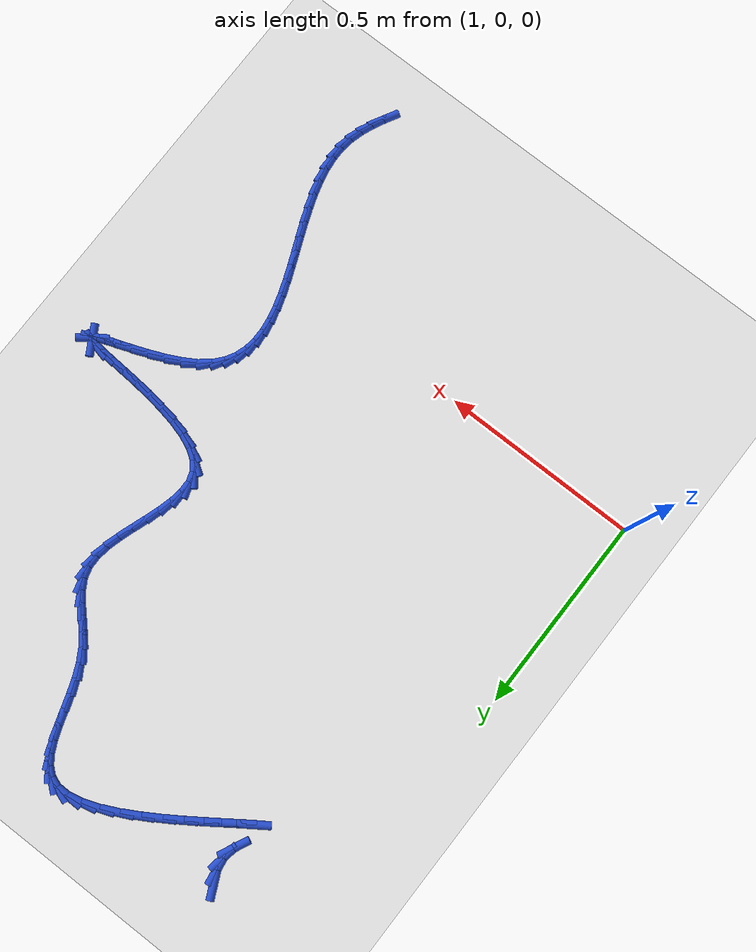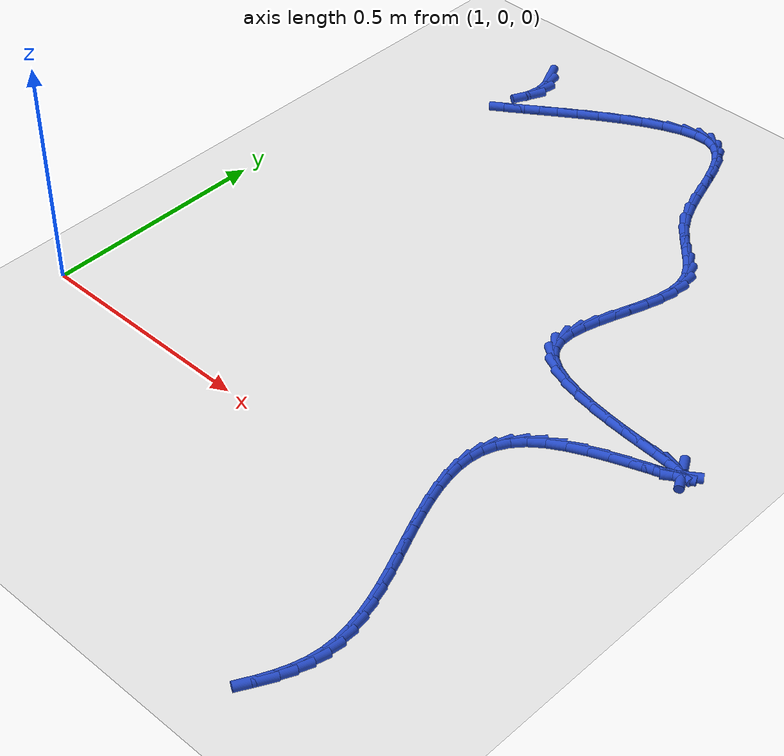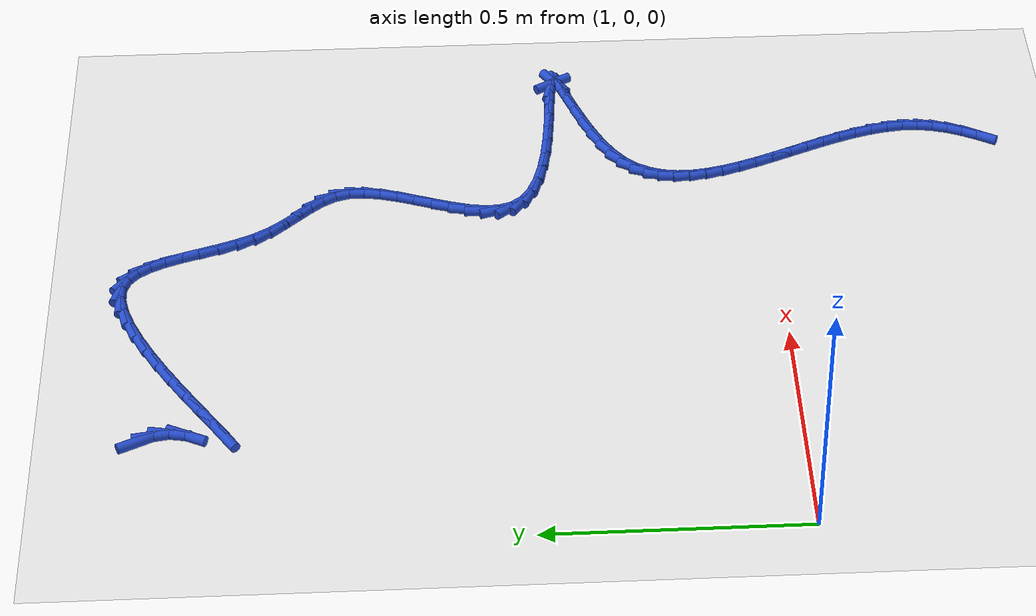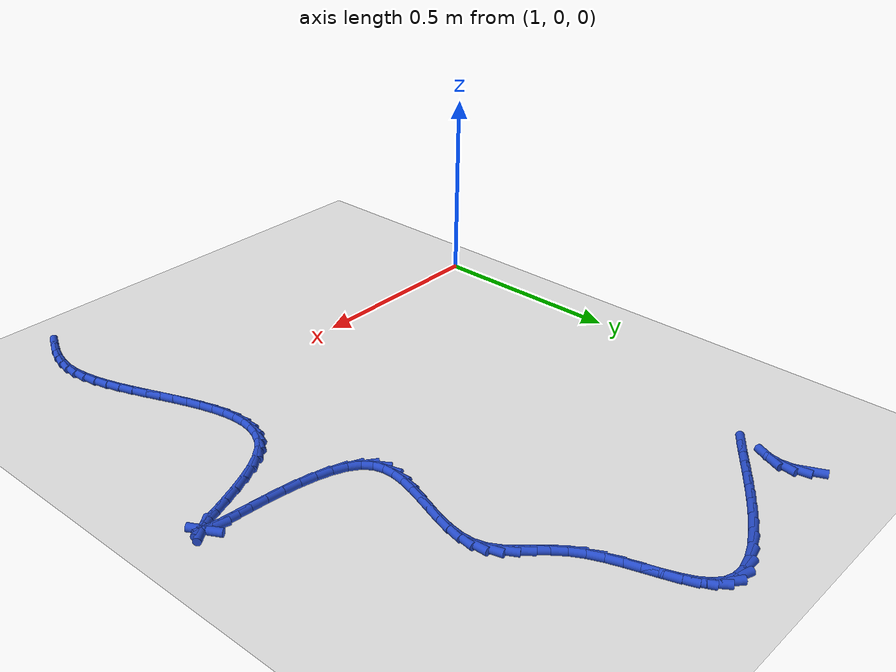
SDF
<sdf version="1.6">
 <world name="default">
  <model name="ground_plane">
   <static>1</static>
   <link name="link">
    <collision name="collision">
     <geometry><plane><normal>0 0 1</normal><size>100 100</size></plane></geometry>
     <surface><friction><ode><mu>100</mu><mu2>50</mu2></ode></friction></surface>
    </collision>
    <visual name="visual">
     <cast_shadows>0</cast_shadows>
     <geometry><plane><normal>0 0 1</normal><size>100 100</size></plane></geometry>
     <material>
      <script><uri>file://media/materials/scripts/gazebo.material</uri><name>Gazebo/WhiteGlow</name></script>
     </material>
    </visual>
   </link>
  </model>
  <model name="line">
   <link name="link_65">
    <pose>1.255966437680454 1.216960170696036 0.01 0 1.57 -1.132791951174022</pose>
    <collision name="collision">
     <geometry><cylinder><radius>0.01</radius><length>0.08</length></cylinder></geometry>
    </collision>
    <visual name="visual">
     <material>
      <script><name>Gazebo/Blue</name><uri>file://media/materials/scripts/gazebo.material</uri></script>
     </material>
     <geometry><cylinder><radius>0.01</radius><length>0.08</length></cylinder></geometry>
    </visual>
   </link>
   <link name="link_66">
    <pose>1.2689874423579295 1.1891579997324047 0.01 0 1.57 -1.4223576138626208</pose>
    <collision name="collision">
     <geometry><cylinder><radius>0.01</radius><length>0.08</length></cylinder></geometry>
    </collision>
    <visual name="visual">
     <material>
      <script><name>Gazebo/Blue</name><uri>file://media/materials/scripts/gazebo.material</uri></script>
     </material>
     <geometry><cylinder><radius>0.01</radius><length>0.08</length></cylinder></geometry>
    </visual>
   </link>
   <link name="link_67">
    <pose>1.273384985241097 1.1597505985868801 0.01 0 1.57 1.4004081107630555</pose>
    <collision name="collision">
     <geometry><cylinder><radius>0.01</radius><length>0.08</length></cylinder></geometry>
    </collision>
    <visual name="visual">
     <material>
      <script><name>Gazebo/Blue</name><uri>file://media/materials/scripts/gazebo.material</uri></script>
     </material>
     <geometry><cylinder><radius>0.01</radius><length>0.08</length></cylinder></geometry>
    </visual>
   </link>
   <link name="link_68">
    <pose>1.2680902755420087 1.1289775119886534 0.01 0 1.57 1.1302657393272562</pose>
    <collision name="collision">
     <geometry><cylinder><radius>0.01</radius><length>0.08</length></cylinder></geometry>
    </collision>
    <visual name="visual">
     <material>
      <script><name>Gazebo/Blue</name><uri>file://media/materials/scripts/gazebo.material</uri></script>
     </material>
     <geometry><cylinder><radius>0.01</radius><length>0.08</length></cylinder></geometry>
    </visual>
   </link>
   <link name="link_75">
    <pose>1.264637389334059 1.060422292474418 0.01 0 1.57 0.5966789095214345</pose>
    <collision name="collision">
     <geometry><cylinder><radius>0.01</radius><length>0.08</length></cylinder></geometry>
    </collision>
    <visual name="visual">
     <material>
      <script><name>Gazebo/Blue</name><uri>file://media/materials/scripts/gazebo.material</uri></script>
     </material>
     <geometry><cylinder><radius>0.01</radius><length>0.08</length></cylinder></geometry>
    </visual>
   </link>
   <link name="link_76">
    <pose>1.2925825296936941 1.0794046533223696 0.01 0 1.57 0.6084086066822725</pose>
    <collision name="collision">
     <geometry><cylinder><radius>0.01</radius><length>0.08</length></cylinder></geometry>
    </collision>
    <visual name="visual">
     <material>
      <script><name>Gazebo/Blue</name><uri>file://media/materials/scripts/gazebo.material</uri></script>
     </material>
     <geometry><cylinder><radius>0.01</radius><length>0.08</length></cylinder></geometry>
    </visual>
   </link>
   <link name="link_77">
    <pose>1.3254718196585236 1.1023137777999044 0.01 0 1.57 0.6068818676930715</pose>
    <collision name="collision">
     <geometry><cylinder><radius>0.01</radius><length>0.08</length></cylinder></geometry>
    </collision>
    <visual name="visual">
     <material>
      <script><name>Gazebo/Blue</name><uri>file://media/materials/scripts/gazebo.material</uri></script>
     </material>
     <geometry><cylinder><radius>0.01</radius><length>0.08</length></cylinder></geometry>
    </visual>
   </link>
   <link name="link_78">
    <pose>1.3622491534025123 1.1278478260134774 0.01 0 1.57 0.5958431550132711</pose>
    <collision name="collision">
     <geometry><cylinder><radius>0.01</radius><length>0.08</length></cylinder></geometry>
    </collision>
    <visual name="visual">
     <material>
      <script><name>Gazebo/Blue</name><uri>file://media/materials/scripts/gazebo.material</uri></script>
     </material>
     <geometry><cylinder><radius>0.01</radius><length>0.08</length></cylinder></geometry>
    </visual>
   </link>
   <link name="link_79">
    <pose>1.401858425099624 1.154704958069544 0.01 0 1.57 0.5760024215270412</pose>
    <collision name="collision">
     <geometry><cylinder><radius>0.01</radius><length>0.08</length></cylinder></geometry>
    </collision>
    <visual name="visual">
     <material>
      <script><name>Gazebo/Blue</name><uri>file://media/materials/scripts/gazebo.material</uri></script>
     </material>
     <geometry><cylinder><radius>0.01</radius><length>0.08</length></cylinder></geometry>
    </visual>
   </link>
   <link name="link_80">
    <pose>1.4432435289238235 1.181583334074559 0.01 0 1.57 0.5462471683541248</pose>
    <collision name="collision">
     <geometry><cylinder><radius>0.01</radius><length>0.08</length></cylinder></geometry>
    </collision>
    <visual name="visual">
     <material>
      <script><name>Gazebo/Blue</name><uri>file://media/materials/scripts/gazebo.material</uri></script>
     </material>
     <geometry><cylinder><radius>0.01</radius><length>0.08</length></cylinder></geometry>
    </visual>
   </link>
   <link name="link_81">
    <pose>1.485348359049075 1.2071811141349784 0.01 0 1.57 0.5036276831516681</pose>
    <collision name="collision">
     <geometry><cylinder><radius>0.01</radius><length>0.08</length></cylinder></geometry>
    </collision>
    <visual name="visual">
     <material>
      <script><name>Gazebo/Blue</name><uri>file://media/materials/scripts/gazebo.material</uri></script>
     </material>
     <geometry><cylinder><radius>0.01</radius><length>0.08</length></cylinder></geometry>
    </visual>
   </link>
   <link name="link_82">
    <pose>1.527116809649343 1.2301964583572567 0.01 0 1.57 0.4424877239583572</pose>
    <collision name="collision">
     <geometry><cylinder><radius>0.01</radius><length>0.08</length></cylinder></geometry>
    </collision>
    <visual name="visual">
     <material>
      <script><name>Gazebo/Blue</name><uri>file://media/materials/scripts/gazebo.material</uri></script>
     </material>
     <geometry><cylinder><radius>0.01</radius><length>0.08</length></cylinder></geometry>
    </visual>
   </link>
   <link name="link_83">
    <pose>1.5674927748985923 1.24932752684785 0.01 0 1.57 0.3523334688093177</pose>
    <collision name="collision">
     <geometry><cylinder><radius>0.01</radius><length>0.08</length></cylinder></geometry>
    </collision>
    <visual name="visual">
     <material>
      <script><name>Gazebo/Blue</name><uri>file://media/materials/scripts/gazebo.material</uri></script>
     </material>
     <geometry><cylinder><radius>0.01</radius><length>0.08</length></cylinder></geometry>
    </visual>
   </link>
   <link name="link_84">
    <pose>1.6054201489707869 1.2632724797132129 0.01 0 1.57 0.21333397487717423</pose>
    <collision name="collision">
     <geometry><cylinder><radius>0.01</radius><length>0.08</length></cylinder></geometry>
    </collision>
    <visual name="visual">
     <material>
      <script><name>Gazebo/Blue</name><uri>file://media/materials/scripts/gazebo.material</uri></script>
     </material>
     <geometry><cylinder><radius>0.01</radius><length>0.08</length></cylinder></geometry>
    </visual>
   </link>
   <link name="link_85">
    <pose>1.639842826039891 1.2707294770598008 0.01 0 1.57 -0.011144119289282977</pose>
    <collision name="collision">
     <geometry><cylinder><radius>0.01</radius><length>0.08</length></cylinder></geometry>
    </collision>
    <visual name="visual">
     <material>
      <script><name>Gazebo/Blue</name><uri>file://media/materials/scripts/gazebo.material</uri></script>
     </material>
     <geometry><cylinder><radius>0.01</radius><length>0.08</length></cylinder></geometry>
    </visual>
   </link>
   <link name="link_86">
    <pose>1.6697047002798702 1.2703966789940695 0.01 0 1.57 -0.35107430216440577</pose>
    <collision name="collision">
     <geometry><cylinder><radius>0.01</radius><length>0.08</length></cylinder></geometry>
    </collision>
    <visual name="visual">
     <material>
      <script><name>Gazebo/Blue</name><uri>file://media/materials/scripts/gazebo.material</uri></script>
     </material>
     <geometry><cylinder><radius>0.01</radius><length>0.08</length></cylinder></geometry>
    </visual>
   </link>
   <link name="link_87">
    <pose>1.6942783260812213 1.2613966764852742 0.01 0 1.57 -0.7002691836156041</pose>
    <collision name="collision">
     <geometry><cylinder><radius>0.01</radius><length>0.08</length></cylinder></geometry>
    </collision>
    <visual name="visual">
     <material>
      <script><name>Gazebo/Blue</name><uri>file://media/materials/scripts/gazebo.material</uri></script>
     </material>
     <geometry><cylinder><radius>0.01</radius><length>0.08</length></cylinder></geometry>
    </visual>
   </link>
   <link name="link_88">
    <pose>1.7141974320585887 1.2446098769992011 0.01 0 1.57 -0.9605348628066841</pose>
    <collision name="collision">
     <geometry><cylinder><radius>0.01</radius><length>0.08</length></cylinder></geometry>
    </collision>
    <visual name="visual">
     <material>
      <script><name>Gazebo/Blue</name><uri>file://media/materials/scripts/gazebo.material</uri></script>
     </material>
     <geometry><cylinder><radius>0.01</radius><length>0.08</length></cylinder></geometry>
    </visual>
   </link>
   <link name="link_89">
    <pose>1.7304480825580548 1.2213716933566092 0.01 0 1.57 -1.1244733069168174</pose>
    <collision name="collision">
     <geometry><cylinder><radius>0.01</radius><length>0.08</length></cylinder></geometry>
    </collision>
    <visual name="visual">
     <material>
      <script><name>Gazebo/Blue</name><uri>file://media/materials/scripts/gazebo.material</uri></script>
     </material>
     <geometry><cylinder><radius>0.01</radius><length>0.08</length></cylinder></geometry>
    </visual>
   </link>
   <link name="link_90">
    <pose>1.7440163424561237 1.1930175390632434 0.01 0 1.57 -1.216906699708312</pose>
    <collision name="collision">
     <geometry><cylinder><radius>0.01</radius><length>0.08</length></cylinder></geometry>
    </collision>
    <visual name="visual">
     <material>
      <script><name>Gazebo/Blue</name><uri>file://media/materials/scripts/gazebo.material</uri></script>
     </material>
     <geometry><cylinder><radius>0.01</radius><length>0.08</length></cylinder></geometry>
    </visual>
   </link>
   <link name="link_91">
    <pose>1.7558882766292991 1.1608828276248473 0.01 0 1.57 -1.2585739723093685</pose>
    <collision name="collision">
     <geometry><cylinder><radius>0.01</radius><length>0.08</length></cylinder></geometry>
    </collision>
    <visual name="visual">
     <material>
      <script><name>Gazebo/Blue</name><uri>file://media/materials/scripts/gazebo.material</uri></script>
     </material>
     <geometry><cylinder><radius>0.01</radius><length>0.08</length></cylinder></geometry>
    </visual>
   </link>
   <link name="link_92">
    <pose>1.7670499499540828 1.1263029725471656 0.01 0 1.57 -1.2606661836608997</pose>
    <collision name="collision">
     <geometry><cylinder><radius>0.01</radius><length>0.08</length></cylinder></geometry>
    </collision>
    <visual name="visual">
     <material>
      <script><name>Gazebo/Blue</name><uri>file://media/materials/scripts/gazebo.material</uri></script>
     </material>
     <geometry><cylinder><radius>0.01</radius><length>0.08</length></cylinder></geometry>
    </visual>
   </link>
   <link name="link_93">
    <pose>1.7784874273069806 1.0906133873359432 0.01 0 1.57 -1.2269306978500822</pose>
    <collision name="collision">
     <geometry><cylinder><radius>0.01</radius><length>0.08</length></cylinder></geometry>
    </collision>
    <visual name="visual">
     <material>
      <script><name>Gazebo/Blue</name><uri>file://media/materials/scripts/gazebo.material</uri></script>
     </material>
     <geometry><cylinder><radius>0.01</radius><length>0.08</length></cylinder></geometry>
    </visual>
   </link>
   <link name="link_94">
    <pose>1.7911867735644962 1.055149485496924 0.01 0 1.57 -1.155547205642037</pose>
    <collision name="collision">
     <geometry><cylinder><radius>0.01</radius><length>0.08</length></cylinder></geometry>
    </collision>
    <visual name="visual">
     <material>
      <script><name>Gazebo/Blue</name><uri>file://media/materials/scripts/gazebo.material</uri></script>
     </material>
     <geometry><cylinder><radius>0.01</radius><length>0.08</length></cylinder></geometry>
    </visual>
   </link>
   <link name="link_95">
    <pose>1.8061340536031323 1.0212466805358529 0.01 0 1.57 -1.0406477584317408</pose>
    <collision name="collision">
     <geometry><cylinder><radius>0.01</radius><length>0.08</length></cylinder></geometry>
    </collision>
    <visual name="visual">
     <material>
      <script><name>Gazebo/Blue</name><uri>file://media/materials/scripts/gazebo.material</uri></script>
     </material>
     <geometry><cylinder><radius>0.01</radius><length>0.08</length></cylinder></geometry>
    </visual>
   </link>
   <link name="link_96">
    <pose>1.8243099796876632 0.9902359123154176 0.01 0 1.57 -0.9086318067646572</pose>
    <collision name="collision">
     <geometry><cylinder><radius>0.01</radius><length>0.08</length></cylinder></geometry>
    </collision>
    <visual name="visual">
     <material>
      <script><name>Gazebo/Blue</name><uri>file://media/materials/scripts/gazebo.material</uri></script>
     </material>
     <geometry><cylinder><radius>0.01</radius><length>0.08</length></cylinder></geometry>
    </visual>
   </link>
   <link name="link_97">
    <pose>1.8457857715640118 0.9626879787157663 0.01 0 1.57 -0.8313127868252715</pose>
    <collision name="collision">
     <geometry><cylinder><radius>0.01</radius><length>0.08</length></cylinder></geometry>
    </collision>
    <visual name="visual">
     <material>
      <script><name>Gazebo/Blue</name><uri>file://media/materials/scripts/gazebo.material</uri></script>
     </material>
     <geometry><cylinder><radius>0.01</radius><length>0.08</length></cylinder></geometry>
    </visual>
   </link>
   <link name="link_98">
    <pose>1.8687042805486147 0.9375619724400689 0.01 0 1.57 -0.8220084770636255</pose>
    <collision name="collision">
     <geometry><cylinder><radius>0.01</radius><length>0.08</length></cylinder></geometry>
    </collision>
    <visual name="visual">
     <material>
      <script><name>Gazebo/Blue</name><uri>file://media/materials/scripts/gazebo.material</uri></script>
     </material>
     <geometry><cylinder><radius>0.01</radius><length>0.08</length></cylinder></geometry>
    </visual>
   </link>
   <link name="link_99">
    <pose>1.8909623809857823 0.9136114018470659 0.01 0 1.57 -0.8890569114475928</pose>
    <collision name="collision">
     <geometry><cylinder><radius>0.01</radius><length>0.08</length></cylinder></geometry>
    </collision>
    <visual name="visual">
     <material>
      <script><name>Gazebo/Blue</name><uri>file://media/materials/scripts/gazebo.material</uri></script>
     </material>
     <geometry><cylinder><radius>0.01</radius><length>0.08</length></cylinder></geometry>
    </visual>
   </link>
   <link name="link_100">
    <pose>1.9104569472198252 0.889589775295499 0.01 0 1.57 -1.0472470602074047</pose>
    <collision name="collision">
     <geometry><cylinder><radius>0.01</radius><length>0.08</length></cylinder></geometry>
    </collision>
    <visual name="visual">
     <material>
      <script><name>Gazebo/Blue</name><uri>file://media/materials/scripts/gazebo.material</uri></script>
     </material>
     <geometry><cylinder><radius>0.01</radius><length>0.08</length></cylinder></geometry>
    </visual>
   </link>
   <link name="link_101">
    <pose>1.9250848535950535 0.8642506011441086 0.01 0 1.57 -1.300286925717343</pose>
    <collision name="collision">
     <geometry><cylinder><radius>0.01</radius><length>0.08</length></cylinder></geometry>
    </collision>
    <visual name="visual">
     <material>
      <script><name>Gazebo/Blue</name><uri>file://media/materials/scripts/gazebo.material</uri></script>
     </material>
     <geometry><cylinder><radius>0.01</radius><length>0.08</length></cylinder></geometry>
    </visual>
   </link>
   <link name="link_102">
    <pose>1.9328125802427751 0.8363835191570818 0.01 0 1.57 -1.5533278999614122</pose>
    <collision name="collision">
     <geometry><cylinder><radius>0.01</radius><length>0.08</length></cylinder></geometry>
    </collision>
    <visual name="visual">
     <material>
      <script><name>Gazebo/Blue</name><uri>file://media/materials/scripts/gazebo.material</uri></script>
     </material>
     <geometry><cylinder><radius>0.01</radius><length>0.08</length></cylinder></geometry>
    </visual>
   </link>
   <link name="link_103">
    <pose>1.9333489318078363 0.8056825857589744 0.01 0 1.57 1.4163365969782695</pose>
    <collision name="collision">
     <geometry><cylinder><radius>0.01</radius><length>0.08</length></cylinder></geometry>
    </collision>
    <visual name="visual">
     <material>
      <script><name>Gazebo/Blue</name><uri>file://media/materials/scripts/gazebo.material</uri></script>
     </material>
     <geometry><cylinder><radius>0.01</radius><length>0.08</length></cylinder></geometry>
    </visual>
   </link>
   <link name="link_104">
    <pose>1.928227407917122 0.7727890314105328 0.01 0 1.57 1.3105628759899306</pose>
    <collision name="collision">
     <geometry><cylinder><radius>0.01</radius><length>0.08</length></cylinder></geometry>
    </collision>
    <visual name="visual">
     <material>
      <script><name>Gazebo/Blue</name><uri>file://media/materials/scripts/gazebo.material</uri></script>
     </material>
     <geometry><cylinder><radius>0.01</radius><length>0.08</length></cylinder></geometry>
    </visual>
   </link>
   <link name="link_105">
    <pose>1.9190675990984323 0.7383887751735585 0.01 0 1.57 1.2531870204448792</pose>
    <collision name="collision">
     <geometry><cylinder><radius>0.01</radius><length>0.08</length></cylinder></geometry>
    </collision>
    <visual name="visual">
     <material>
      <script><name>Gazebo/Blue</name><uri>file://media/materials/scripts/gazebo.material</uri></script>
     </material>
     <geometry><cylinder><radius>0.01</radius><length>0.08</length></cylinder></geometry>
    </visual>
   </link>
   <link name="link_106">
    <pose>1.9074890958795667 0.7031677361098534 0.01 0 1.57 1.2340448823273769</pose>
    <collision name="collision">
     <geometry><cylinder><radius>0.01</radius><length>0.08</length></cylinder></geometry>
    </collision>
    <visual name="visual">
     <material>
      <script><name>Gazebo/Blue</name><uri>file://media/materials/scripts/gazebo.material</uri></script>
     </material>
     <geometry><cylinder><radius>0.01</radius><length>0.08</length></cylinder></geometry>
    </visual>
   </link>
   <link name="link_107">
    <pose>1.895111488788328 0.6678118332812196 0.01 0 1.57 1.2501967963801774</pose>
    <collision name="collision">
     <geometry><cylinder><radius>0.01</radius><length>0.08</length></cylinder></geometry>
    </collision>
    <visual name="visual">
     <material>
      <script><name>Gazebo/Blue</name><uri>file://media/materials/scripts/gazebo.material</uri></script>
     </material>
     <geometry><cylinder><radius>0.01</radius><length>0.08</length></cylinder></geometry>
    </visual>
   </link>
   <link name="link_108">
    <pose>1.8835543683525156 0.6330069857494599 0.01 0 1.57 1.3055935614691674</pose>
    <collision name="collision">
     <geometry><cylinder><radius>0.01</radius><length>0.08</length></cylinder></geometry>
    </collision>
    <visual name="visual">
     <material>
      <script><name>Gazebo/Blue</name><uri>file://media/materials/scripts/gazebo.material</uri></script>
     </material>
     <geometry><cylinder><radius>0.01</radius><length>0.08</length></cylinder></geometry>
    </visual>
   </link>
   <link name="link_109">
    <pose>1.8744373250999302 0.5994391125763756 0.01 0 1.57 1.4123204320247404</pose>
    <collision name="collision">
     <geometry><cylinder><radius>0.01</radius><length>0.08</length></cylinder></geometry>
    </collision>
    <visual name="visual">
     <material>
      <script><name>Gazebo/Blue</name><uri>file://media/materials/scripts/gazebo.material</uri></script>
     </material>
     <geometry><cylinder><radius>0.01</radius><length>0.08</length></cylinder></geometry>
    </visual>
   </link>
   <link name="link_110">
    <pose>1.8693799495583723 0.5677941328237684 0.01 0 1.57 -1.54938208056634</pose>
    <collision name="collision">
     <geometry><cylinder><radius>0.01</radius><length>0.08</length></cylinder></geometry>
    </collision>
    <visual name="visual">
     <material>
      <script><name>Gazebo/Blue</name><uri>file://media/materials/scripts/gazebo.material</uri></script>
     </material>
     <geometry><cylinder><radius>0.01</radius><length>0.08</length></cylinder></geometry>
    </visual>
   </link>
   <link name="link_111">
    <pose>1.8700018322556429 0.5387579655534411 0.01 0 1.57 -1.272287114281217</pose>
    <collision name="collision">
     <geometry><cylinder><radius>0.01</radius><length>0.08</length></cylinder></geometry>
    </collision>
    <visual name="visual">
     <material>
      <script><name>Gazebo/Blue</name><uri>file://media/materials/scripts/gazebo.material</uri></script>
     </material>
     <geometry><cylinder><radius>0.01</radius><length>0.08</length></cylinder></geometry>
    </visual>
   </link>
   <link name="link_112">
    <pose>1.8779225637195425 0.5130165298271954 0.01 0 1.57 -0.9140510868652898</pose>
    <collision name="collision">
     <geometry><cylinder><radius>0.01</radius><length>0.08</length></cylinder></geometry>
    </collision>
    <visual name="visual">
     <material>
      <script><name>Gazebo/Blue</name><uri>file://media/materials/scripts/gazebo.material</uri></script>
     </material>
     <geometry><cylinder><radius>0.01</radius><length>0.08</length></cylinder></geometry>
    </visual>
   </link>
   <link name="link_113">
    <pose>1.8947112883214756 0.49123852557598274 0.01 0 1.57 -0.6025205792539031</pose>
    <collision name="collision">
     <geometry><cylinder><radius>0.01</radius><length>0.08</length></cylinder></geometry>
    </collision>
    <visual name="visual">
     <material>
      <script><name>Gazebo/Blue</name><uri>file://media/materials/scripts/gazebo.material</uri></script>
     </material>
     <geometry><cylinder><radius>0.01</radius><length>0.08</length></cylinder></geometry>
    </visual>
   </link>
   <link name="link_114">
    <pose>1.9204007237220815 0.4735682137156748 0.01 0 1.57 -0.40361564262968913</pose>
    <collision name="collision">
     <geometry><cylinder><radius>0.01</radius><length>0.08</length></cylinder></geometry>
    </collision>
    <visual name="visual">
     <material>
      <script><name>Gazebo/Blue</name><uri>file://media/materials/scripts/gazebo.material</uri></script>
     </material>
     <geometry><cylinder><radius>0.01</radius><length>0.08</length></cylinder></geometry>
    </visual>
   </link>
   <link name="link_115">
    <pose>1.9532435983858185 0.4595422793016365 0.01 0 1.57 -0.2777896731363634</pose>
    <collision name="collision">
     <geometry><cylinder><radius>0.01</radius><length>0.08</length></cylinder></geometry>
    </collision>
    <visual name="visual">
     <material>
      <script><name>Gazebo/Blue</name><uri>file://media/materials/scripts/gazebo.material</uri></script>
     </material>
     <geometry><cylinder><radius>0.01</radius><length>0.08</length></cylinder></geometry>
    </visual>
   </link>
   <link name="link_116">
    <pose>1.991393151244727 0.4486634479481321 0.01 0 1.57 -0.19524804870041493</pose>
    <collision name="collision">
     <geometry><cylinder><radius>0.01</radius><length>0.08</length></cylinder></geometry>
    </collision>
    <visual name="visual">
     <material>
      <script><name>Gazebo/Blue</name><uri>file://media/materials/scripts/gazebo.material</uri></script>
     </material>
     <geometry><cylinder><radius>0.01</radius><length>0.08</length></cylinder></geometry>
    </visual>
   </link>
   <link name="link_117">
    <pose>2.033002621230849 0.44043444526942543 0.01 0 1.57 -0.13966954781488644</pose>
    <collision name="collision">
     <geometry><cylinder><radius>0.01</radius><length>0.08</length></cylinder></geometry>
    </collision>
    <visual name="visual">
     <material>
      <script><name>Gazebo/Blue</name><uri>file://media/materials/scripts/gazebo.material</uri></script>
     </material>
     <geometry><cylinder><radius>0.01</radius><length>0.08</length></cylinder></geometry>
    </visual>
   </link>
   <link name="link_118">
    <pose>2.076225247276229 0.4343579968797803 0.01 0 1.57 -0.10248382302571493</pose>
    <collision name="collision">
     <geometry><cylinder><radius>0.01</radius><length>0.08</length></cylinder></geometry>
    </collision>
    <visual name="visual">
     <material>
      <script><name>Gazebo/Blue</name><uri>file://media/materials/scripts/gazebo.material</uri></script>
     </material>
     <geometry><cylinder><radius>0.01</radius><length>0.08</length></cylinder></geometry>
    </visual>
   </link>
   <link name="link_119">
    <pose>2.119214268312906 0.429936828393461 0.01 0 1.57 -0.07959851873408216</pose>
    <collision name="collision">
     <geometry><cylinder><radius>0.01</radius><length>0.08</length></cylinder></geometry>
    </collision>
    <visual name="visual">
     <material>
      <script><name>Gazebo/Blue</name><uri>file://media/materials/scripts/gazebo.material</uri></script>
     </material>
     <geometry><cylinder><radius>0.01</radius><length>0.08</length></cylinder></geometry>
    </visual>
   </link>
   <link name="link_120">
    <pose>2.160122923272926 0.4266736654247313 0.01 0 1.57 -0.07025531066190914</pose>
    <collision name="collision">
     <geometry><cylinder><radius>0.01</radius><length>0.08</length></cylinder></geometry>
    </collision>
    <visual name="visual">
     <material>
      <script><name>Gazebo/Blue</name><uri>file://media/materials/scripts/gazebo.material</uri></script>
     </material>
     <geometry><cylinder><radius>0.01</radius><length>0.08</length></cylinder></geometry>
    </visual>
   </link>
   <link name="link_121">
    <pose>2.197104451088327 0.424071233587855 0.01 0 1.57 -0.07799460509168624</pose>
    <collision name="collision">
     <geometry><cylinder><radius>0.01</radius><length>0.08</length></cylinder></geometry>
    </collision>
    <visual name="visual">
     <material>
      <script><name>Gazebo/Blue</name><uri>file://media/materials/scripts/gazebo.material</uri></script>
     </material>
     <geometry><cylinder><radius>0.01</radius><length>0.08</length></cylinder></geometry>
    </visual>
   </link>
   <link name="link_122">
    <pose>2.2283120906911535 0.42163225849709635 0.01 0 1.57 -0.11701894866235811</pose>
    <collision name="collision">
     <geometry><cylinder><radius>0.01</radius><length>0.08</length></cylinder></geometry>
    </collision>
    <visual name="visual">
     <material>
      <script><name>Gazebo/Blue</name><uri>file://media/materials/scripts/gazebo.material</uri></script>
     </material>
     <geometry><cylinder><radius>0.01</radius><length>0.08</length></cylinder></geometry>
    </visual>
   </link>
   <link name="link_123">
    <pose>2.251899081013449 0.41885946576671923 0.01 0 1.57 -0.24990452523712287</pose>
    <collision name="collision">
     <geometry><cylinder><radius>0.01</radius><length>0.08</length></cylinder></geometry>
    </collision>
    <visual name="visual">
     <material>
      <script><name>Gazebo/Blue</name><uri>file://media/materials/scripts/gazebo.material</uri></script>
     </material>
     <geometry><cylinder><radius>0.01</radius><length>0.08</length></cylinder></geometry>
    </visual>
   </link>
   <link name="link_124">
    <pose>2.266018660987253 0.41525558101098753 0.01 0 1.57 -1.0534029858567613</pose>
    <collision name="collision">
     <geometry><cylinder><radius>0.01</radius><length>0.08</length></cylinder></geometry>
    </collision>
    <visual name="visual">
     <material>
      <script><name>Gazebo/Blue</name><uri>file://media/materials/scripts/gazebo.material</uri></script>
     </material>
     <geometry><cylinder><radius>0.01</radius><length>0.08</length></cylinder></geometry>
    </visual>
   </link>
   <link name="link_125">
    <pose>2.2688255397479185 0.4103234948865213 0.01 0 1.57 0.617350296806888</pose>
    <collision name="collision">
     <geometry><cylinder><radius>0.01</radius><length>0.08</length></cylinder></geometry>
    </collision>
    <visual name="visual">
     <material>
      <script><name>Gazebo/Blue</name><uri>file://media/materials/scripts/gazebo.material</uri></script>
     </material>
     <geometry><cylinder><radius>0.01</radius><length>0.08</length></cylinder></geometry>
    </visual>
   </link>
   <link name="link_126">
    <pose>2.259463332952118 0.4036771109016713 0.01 0 1.57 0.4052106565115568</pose>
    <collision name="collision">
     <geometry><cylinder><radius>0.01</radius><length>0.08</length></cylinder></geometry>
    </collision>
    <visual name="visual">
     <material>
      <script><name>Gazebo/Blue</name><uri>file://media/materials/scripts/gazebo.material</uri></script>
     </material>
     <geometry><cylinder><radius>0.01</radius><length>0.08</length></cylinder></geometry>
    </visual>
   </link>
   <link name="link_127">
    <pose>2.2397798445330976 0.39523389983401847 0.01 0 1.57 0.3550956277062943</pose>
    <collision name="collision">
     <geometry><cylinder><radius>0.01</radius><length>0.08</length></cylinder></geometry>
    </collision>
    <visual name="visual">
     <material>
      <script><name>Gazebo/Blue</name><uri>file://media/materials/scripts/gazebo.material</uri></script>
     </material>
     <geometry><cylinder><radius>0.01</radius><length>0.08</length></cylinder></geometry>
    </visual>
   </link>
   <link name="link_128">
    <pose>2.2120809119052747 0.384962750468647 0.01 0 1.57 0.3482855159298901</pose>
    <collision name="collision">
     <geometry><cylinder><radius>0.01</radius><length>0.08</length></cylinder></geometry>
    </collision>
    <visual name="visual">
     <material>
      <script><name>Gazebo/Blue</name><uri>file://media/materials/scripts/gazebo.material</uri></script>
     </material>
     <geometry><cylinder><radius>0.01</radius><length>0.08</length></cylinder></geometry>
    </visual>
   </link>
   <link name="link_129">
    <pose>2.1786723724830654 0.3728325515906402 0.01 0 1.57 0.36389884242335135</pose>
    <collision name="collision">
     <geometry><cylinder><radius>0.01</radius><length>0.08</length></cylinder></geometry>
    </collision>
    <visual name="visual">
     <material>
      <script><name>Gazebo/Blue</name><uri>file://media/materials/scripts/gazebo.material</uri></script>
     </material>
     <geometry><cylinder><radius>0.01</radius><length>0.08</length></cylinder></geometry>
    </visual>
   </link>
   <link name="link_130">
    <pose>2.1418600636808875 0.35881219198508246 0.01 0 1.57 0.39806135347122173</pose>
    <collision name="collision">
     <geometry><cylinder><radius>0.01</radius><length>0.08</length></cylinder></geometry>
    </collision>
    <visual name="visual">
     <material>
      <script><name>Gazebo/Blue</name><uri>file://media/materials/scripts/gazebo.material</uri></script>
     </material>
     <geometry><cylinder><radius>0.01</radius><length>0.08</length></cylinder></geometry>
    </visual>
   </link>
   <link name="link_131">
    <pose>2.103949822913156 0.34287056043705727 0.01 0 1.57 0.4536334960761571</pose>
    <collision name="collision">
     <geometry><cylinder><radius>0.01</radius><length>0.08</length></cylinder></geometry>
    </collision>
    <visual name="visual">
     <material>
      <script><name>Gazebo/Blue</name><uri>file://media/materials/scripts/gazebo.material</uri></script>
     </material>
     <geometry><cylinder><radius>0.01</radius><length>0.08</length></cylinder></geometry>
    </visual>
   </link>
   <link name="link_132">
    <pose>2.067247487594288 0.3249765457316486 0.01 0 1.57 0.5396293792272366</pose>
    <collision name="collision">
     <geometry><cylinder><radius>0.01</radius><length>0.08</length></cylinder></geometry>
    </collision>
    <visual name="visual">
     <material>
      <script><name>Gazebo/Blue</name><uri>file://media/materials/scripts/gazebo.material</uri></script>
     </material>
     <geometry><cylinder><radius>0.01</radius><length>0.08</length></cylinder></geometry>
    </visual>
   </link>
   <link name="link_133">
    <pose>2.0340588951387018 0.3050990366539399 0.01 0 1.57 0.6736293307285867</pose>
    <collision name="collision">
     <geometry><cylinder><radius>0.01</radius><length>0.08</length></cylinder></geometry>
    </collision>
    <visual name="visual">
     <material>
      <script><name>Gazebo/Blue</name><uri>file://media/materials/scripts/gazebo.material</uri></script>
     </material>
     <geometry><cylinder><radius>0.01</radius><length>0.08</length></cylinder></geometry>
    </visual>
   </link>
   <link name="link_134">
    <pose>2.0066357372051757 0.2832104595004578 0.01 0 1.57 0.8543115000440529</pose>
    <collision name="collision">
     <geometry><cylinder><radius>0.01</radius><length>0.08</length></cylinder></geometry>
    </collision>
    <visual name="visual">
     <material>
      <script><name>Gazebo/Blue</name><uri>file://media/materials/scripts/gazebo.material</uri></script>
     </material>
     <geometry><cylinder><radius>0.01</radius><length>0.08</length></cylinder></geometry>
    </visual>
   </link>
   <link name="link_135">
    <pose>1.9858753512968443 0.259371724757593 0.01 0 1.57 1.0525524455814672</pose>
    <collision name="collision">
     <geometry><cylinder><radius>0.01</radius><length>0.08</length></cylinder></geometry>
    </collision>
    <visual name="visual">
     <material>
      <script><name>Gazebo/Blue</name><uri>file://media/materials/scripts/gazebo.material</uri></script>
     </material>
     <geometry><cylinder><radius>0.01</radius><length>0.08</length></cylinder></geometry>
    </visual>
   </link>
   <link name="link_136">
    <pose>1.971257245132971 0.23373637416277823 0.01 0 1.57 1.249976103112656</pose>
    <collision name="collision">
     <geometry><cylinder><radius>0.01</radius><length>0.08</length></cylinder></geometry>
    </collision>
    <visual name="visual">
     <material>
      <script><name>Gazebo/Blue</name><uri>file://media/materials/scripts/gazebo.material</uri></script>
     </material>
     <geometry><cylinder><radius>0.01</radius><length>0.08</length></cylinder></geometry>
    </visual>
   </link>
   <link name="link_137">
    <pose>1.9621940772020396 0.20646231692262335 0.01 0 1.57 1.4293173089703328</pose>
    <collision name="collision">
     <geometry><cylinder><radius>0.01</radius><length>0.08</length></cylinder></geometry>
    </collision>
    <visual name="visual">
     <material>
      <script><name>Gazebo/Blue</name><uri>file://media/materials/scripts/gazebo.material</uri></script>
     </material>
     <geometry><cylinder><radius>0.01</radius><length>0.08</length></cylinder></geometry>
    </visual>
   </link>
   <link name="link_138">
    <pose>1.9580985059925324 0.17770746224373773 0.01 0 1.57 -1.5613316704689675</pose>
    <collision name="collision">
     <geometry><cylinder><radius>0.01</radius><length>0.08</length></cylinder></geometry>
    </collision>
    <visual name="visual">
     <material>
      <script><name>Gazebo/Blue</name><uri>file://media/materials/scripts/gazebo.material</uri></script>
     </material>
     <geometry><cylinder><radius>0.01</radius><length>0.08</length></cylinder></geometry>
    </visual>
   </link>
   <link name="link_139">
    <pose>1.9583831899929331 0.14762971933273106 0.01 0 1.57 -1.4410163675393528</pose>
    <collision name="collision">
     <geometry><cylinder><radius>0.01</radius><length>0.08</length></cylinder></geometry>
    </collision>
    <visual name="visual">
     <material>
      <script><name>Gazebo/Blue</name><uri>file://media/materials/scripts/gazebo.material</uri></script>
     </material>
     <geometry><cylinder><radius>0.01</radius><length>0.08</length></cylinder></geometry>
    </visual>
   </link>
   <link name="link_140">
    <pose>1.9624607876917244 0.11638699739621201 0.01 0 1.57 -1.3486861357110944</pose>
    <collision name="collision">
     <geometry><cylinder><radius>0.01</radius><length>0.08</length></cylinder></geometry>
    </collision>
    <visual name="visual">
     <material>
      <script><name>Gazebo/Blue</name><uri>file://media/materials/scripts/gazebo.material</uri></script>
     </material>
     <geometry><cylinder><radius>0.01</radius><length>0.08</length></cylinder></geometry>
    </visual>
   </link>
   <link name="link_141">
    <pose>1.9697439575773887 0.08413720564079184 0.01 0 1.57 -1.2801237196068327</pose>
    <collision name="collision">
     <geometry><cylinder><radius>0.01</radius><length>0.08</length></cylinder></geometry>
    </collision>
    <visual name="visual">
     <material>
      <script><name>Gazebo/Blue</name><uri>file://media/materials/scripts/gazebo.material</uri></script>
     </material>
     <geometry><cylinder><radius>0.01</radius><length>0.08</length></cylinder></geometry>
    </visual>
   </link>
   <link name="link_142">
    <pose>1.9796453581384106 0.05103825327307934 0.01 0 1.57 -1.2313369969442507</pose>
    <collision name="collision">
     <geometry><cylinder><radius>0.01</radius><length>0.08</length></cylinder></geometry>
    </collision>
    <visual name="visual">
     <material>
      <script><name>Gazebo/Blue</name><uri>file://media/materials/scripts/gazebo.material</uri></script>
     </material>
     <geometry><cylinder><radius>0.01</radius><length>0.08</length></cylinder></geometry>
    </visual>
   </link>
   <link name="link_143">
    <pose>1.9915776478632723 0.01724804949968403 0.01 0 1.57 -1.1992018998804852</pose>
    <collision name="collision">
     <geometry><cylinder><radius>0.01</radius><length>0.08</length></cylinder></geometry>
    </collision>
    <visual name="visual">
     <material>
      <script><name>Gazebo/Blue</name><uri>file://media/materials/scripts/gazebo.material</uri></script>
     </material>
     <geometry><cylinder><radius>0.01</radius><length>0.08</length></cylinder></geometry>
    </visual>
   </link>
   <link name="link_144">
    <pose>2.004953485240457 -0.01707549647278448 0.01 0 1.57 -1.1815643415432688</pose>
    <collision name="collision">
     <geometry><cylinder><radius>0.01</radius><length>0.08</length></cylinder></geometry>
    </collision>
    <visual name="visual">
     <material>
      <script><name>Gazebo/Blue</name><uri>file://media/materials/scripts/gazebo.material</uri></script>
     </material>
     <geometry><cylinder><radius>0.01</radius><length>0.08</length></cylinder></geometry>
    </visual>
   </link>
   <link name="link_145">
    <pose>2.0191855287584475 -0.05177447543771664 0.01 0 1.57 -1.1771682035052948</pose>
    <collision name="collision">
     <geometry><cylinder><radius>0.01</radius><length>0.08</length></cylinder></geometry>
    </collision>
    <visual name="visual">
     <material>
      <script><name>Gazebo/Blue</name><uri>file://media/materials/scripts/gazebo.material</uri></script>
     </material>
     <geometry><cylinder><radius>0.01</radius><length>0.08</length></cylinder></geometry>
    </visual>
   </link>
   <link name="link_146">
    <pose>2.033686436905728 -0.08669097818850287 0.01 0 1.57 -1.185567017229701</pose>
    <collision name="collision">
     <geometry><cylinder><radius>0.01</radius><length>0.08</length></cylinder></geometry>
    </collision>
    <visual name="visual">
     <material>
      <script><name>Gazebo/Blue</name><uri>file://media/materials/scripts/gazebo.material</uri></script>
     </material>
     <geometry><cylinder><radius>0.01</radius><length>0.08</length></cylinder></geometry>
    </visual>
   </link>
   <link name="link_147">
    <pose>2.0478688681707804 -0.12166709551853362 0.01 0 1.57 -1.2070721989240658</pose>
    <collision name="collision">
     <geometry><cylinder><radius>0.01</radius><length>0.08</length></cylinder></geometry>
    </collision>
    <visual name="visual">
     <material>
      <script><name>Gazebo/Blue</name><uri>file://media/materials/scripts/gazebo.material</uri></script>
     </material>
     <geometry><cylinder><radius>0.01</radius><length>0.08</length></cylinder></geometry>
    </visual>
   </link>
   <link name="link_148">
    <pose>2.0611454810420873 -0.1565449182211992 0.01 0 1.57 -1.2427445096558671</pose>
    <collision name="collision">
     <geometry><cylinder><radius>0.01</radius><length>0.08</length></cylinder></geometry>
    </collision>
    <visual name="visual">
     <material>
      <script><name>Gazebo/Blue</name><uri>file://media/materials/scripts/gazebo.material</uri></script>
     </material>
     <geometry><cylinder><radius>0.01</radius><length>0.08</length></cylinder></geometry>
    </visual>
   </link>
   <link name="link_149">
    <pose>2.072928934008134 -0.19116653708989123 0.01 0 1.57 -1.294406399622089</pose>
    <collision name="collision">
     <geometry><cylinder><radius>0.01</radius><length>0.08</length></cylinder></geometry>
    </collision>
    <visual name="visual">
     <material>
      <script><name>Gazebo/Blue</name><uri>file://media/materials/scripts/gazebo.material</uri></script>
     </material>
     <geometry><cylinder><radius>0.01</radius><length>0.08</length></cylinder></geometry>
    </visual>
   </link>
   <link name="link_150">
    <pose>2.082631885557401 -0.225374042917998 0.01 0 1.57 -1.3646113276533496</pose>
    <collision name="collision">
     <geometry><cylinder><radius>0.01</radius><length>0.08</length></cylinder></geometry>
    </collision>
    <visual name="visual">
     <material>
      <script><name>Gazebo/Blue</name><uri>file://media/materials/scripts/gazebo.material</uri></script>
     </material>
     <geometry><cylinder><radius>0.01</radius><length>0.08</length></cylinder></geometry>
    </visual>
   </link>
   <link name="link_151">
    <pose>2.0896669941783736 -0.25900952649891107 0.01 0 1.57 -1.4564257032268542</pose>
    <collision name="collision">
     <geometry><cylinder><radius>0.01</radius><length>0.08</length></cylinder></geometry>
    </collision>
    <visual name="visual">
     <material>
      <script><name>Gazebo/Blue</name><uri>file://media/materials/scripts/gazebo.material</uri></script>
     </material>
     <geometry><cylinder><radius>0.01</radius><length>0.08</length></cylinder></geometry>
    </visual>
   </link>
   <link name="link_152">
    <pose>2.093446918359533 -0.2919150786260206 0.01 0 1.57 1.5688411061520398</pose>
    <collision name="collision">
     <geometry><cylinder><radius>0.01</radius><length>0.08</length></cylinder></geometry>
    </collision>
    <visual name="visual">
     <material>
      <script><name>Gazebo/Blue</name><uri>file://media/materials/scripts/gazebo.material</uri></script>
     </material>
     <geometry><cylinder><radius>0.01</radius><length>0.08</length></cylinder></geometry>
    </visual>
   </link>
   <link name="link_153">
    <pose>2.093384316589363 -0.3239327900927173 0.01 0 1.57 1.4314155412208143</pose>
    <collision name="collision">
     <geometry><cylinder><radius>0.01</radius><length>0.08</length></cylinder></geometry>
    </collision>
    <visual name="visual">
     <material>
      <script><name>Gazebo/Blue</name><uri>file://media/materials/scripts/gazebo.material</uri></script>
     </material>
     <geometry><cylinder><radius>0.01</radius><length>0.08</length></cylinder></geometry>
    </visual>
   </link>
   <link name="link_154">
    <pose>2.0890341118690436 -0.3549413517802994 0.01 0 1.57 1.3037000350089256</pose>
    <collision name="collision">
     <geometry><cylinder><radius>0.01</radius><length>0.08</length></cylinder></geometry>
    </collision>
    <visual name="visual">
     <material>
      <script><name>Gazebo/Blue</name><uri>file://media/materials/scripts/gazebo.material</uri></script>
     </material>
     <geometry><cylinder><radius>0.01</radius><length>0.08</length></cylinder></geometry>
    </visual>
   </link>
   <link name="link_155">
    <pose>2.0807987669998367 -0.3850374993276823 0.01 0 1.57 1.2002799941954405</pose>
    <collision name="collision">
     <geometry><cylinder><radius>0.01</radius><length>0.08</length></cylinder></geometry>
    </collision>
    <visual name="visual">
     <material>
      <script><name>Gazebo/Blue</name><uri>file://media/materials/scripts/gazebo.material</uri></script>
     </material>
     <geometry><cylinder><radius>0.01</radius><length>0.08</length></cylinder></geometry>
    </visual>
   </link>
   <link name="link_156">
    <pose>2.0693933175961394 -0.41439838331508827 0.01 0 1.57 1.1222995331326986</pose>
    <collision name="collision">
     <geometry><cylinder><radius>0.01</radius><length>0.08</length></cylinder></geometry>
    </collision>
    <visual name="visual">
     <material>
      <script><name>Gazebo/Blue</name><uri>file://media/materials/scripts/gazebo.material</uri></script>
     </material>
     <geometry><cylinder><radius>0.01</radius><length>0.08</length></cylinder></geometry>
    </visual>
   </link>
   <link name="link_157">
    <pose>2.055533292766978 -0.4432012812830477 0.01 0 1.57 1.0688485634725027</pose>
    <collision name="collision">
     <geometry><cylinder><radius>0.01</radius><length>0.08</length></cylinder></geometry>
    </collision>
    <visual name="visual">
     <material>
      <script><name>Gazebo/Blue</name><uri>file://media/materials/scripts/gazebo.material</uri></script>
     </material>
     <geometry><cylinder><radius>0.01</radius><length>0.08</length></cylinder></geometry>
    </visual>
   </link>
  </model>
 </world>
</sdf>
